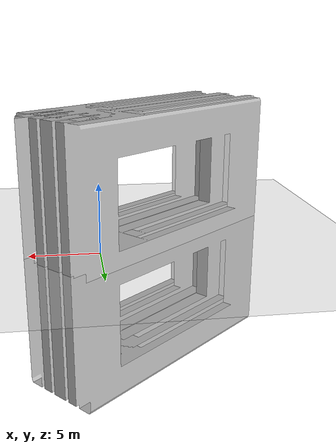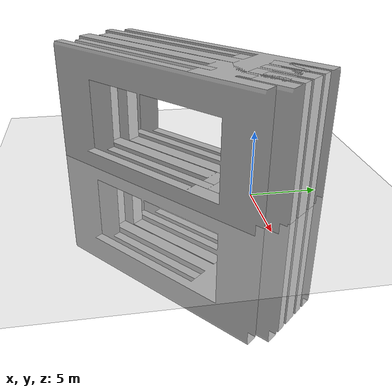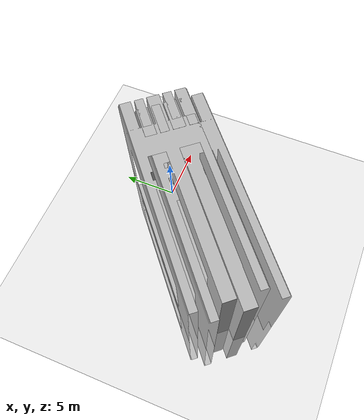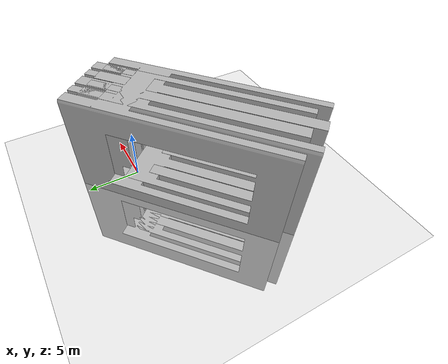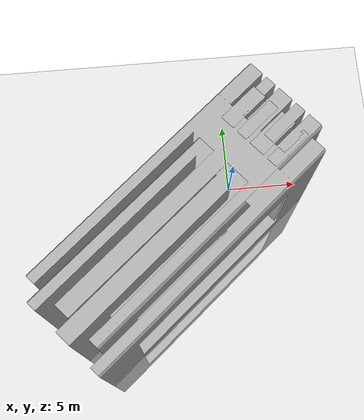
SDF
<?xml version="1.0" ?>
<sdf version="1.4">
  <world name="default">
    <physics type='ode'>
      <gravity>0 0 -9.81</gravity>
      <!-- max step size has to be a multiple of the desired task rate-->
      <max_step_size>0.001</max_step_size>
      <real_time_factor>1</real_time_factor>
    </physics>
    <!-- A global light source -->
    <include>
      <uri>model://sun</uri>
    </include>
    <!-- A ground plane -->
    <include>
      <uri>model://ground_plane</uri>
    </include>
    <include>
      <name>pallet</name>
      <uri>model://pallet_benchmark</uri>
      <pose>1.0 0.85 0 0 0 0.707</pose>
    </include>
    <include>
      <name>pallet</name>
      <uri>model://pallet_benchmark</uri>
      <pose>1.0 -0.75 0 0 0 0.707</pose>
    </include>
  </world>
</sdf>

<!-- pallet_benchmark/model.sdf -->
<sdf version="1.4">
	<model name="pallet_benchmark">
		<static>true</static>
		<link name="link">
			<pose>0 0 0.06 0 0 -1.5708</pose>
			<collision name="collision">
				<geometry>
					<mesh>
						<uri>model://pallet_benchmark/mesh/pallet.dae</uri>
						<scale>0.787 13.50 1.6197</scale>
					</mesh>
				</geometry>

			</collision>
			<visual name="visual">
				<geometry>
					<mesh>
						<uri>model://pallet_benchmark/mesh/pallet.dae</uri>
						<scale>0.787 13.50 1.6197</scale>
					</mesh>
				</geometry>
			</visual>
		</link>
	</model>
</sdf>
